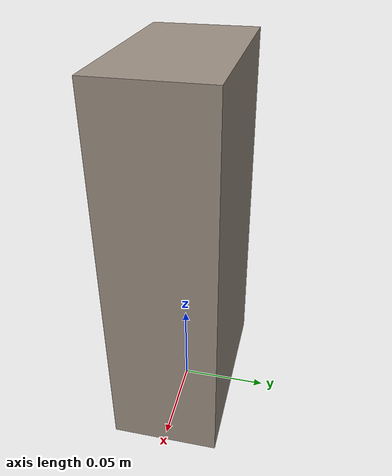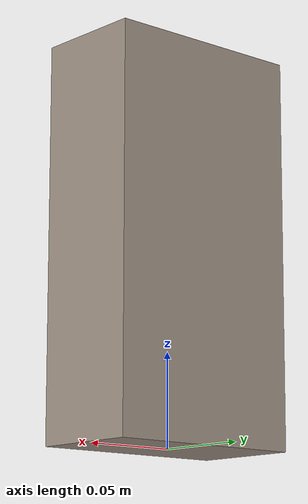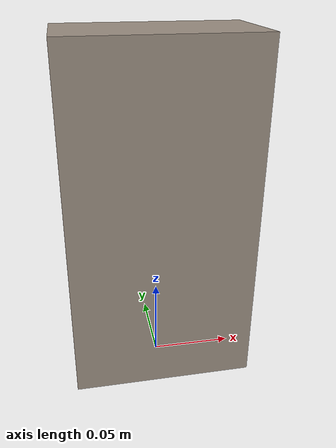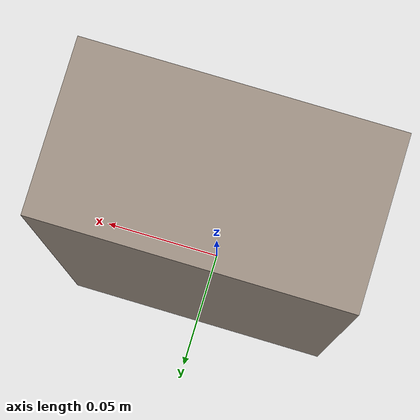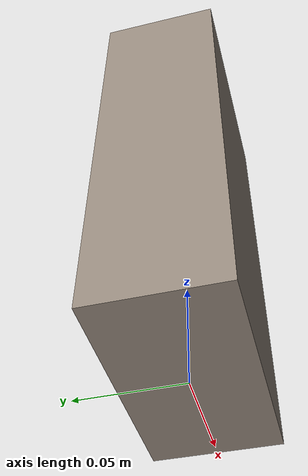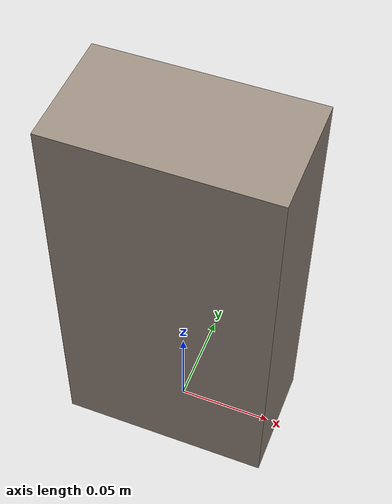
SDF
<sdf version="1.6">
    <model name="box2_kinematic">
        <allow_auto_disable>true</allow_auto_disable>
        <link name="link_1">
            <kinematic>true</kinematic>
            <pose>0 0 0.105 0 0 0 0</pose>
            <inertial>
                <pose>0 0 -0.08 0 0 0 0</pose>
                <inertia>
                    <ixx>0.03974999999999999</ixx>
                    <ixy>0</ixy>
                    <ixz>0</ixz>
                    <iyy>0.046833333333333324</iyy>
                    <iyz>0</iyz>
                    <izz>0.01308333333333333</izz>
                </inertia>
                <mass>10.0</mass>
            </inertial>
            <visual name="visual">
                <geometry>
                    <box>
                        <size>0.11 0.06 0.21</size>
                    </box>
                </geometry>
                <material>
                    <ambient>0.6 0.55 0.5 1.0</ambient>
                    <diffuse>0.6 0.55 0.5 1.0</diffuse>
                </material>
            </visual>
            <collision name="box_collision">
                <geometry>
                    <box>
                        <size>0.11 0.06 0.21</size>
                    </box>
                </geometry>
                <surface>
                    <friction>
                        <ode>
                            <mu>1.0</mu>
                            <mu2>1.0</mu2>
                        </ode>
                    </friction>
                    <contact>
                        <ode>
                            <kp>1e15</kp>
                            <kd>1e12</kd>
                        </ode>
                    </contact>
                </surface>
            </collision>
        </link>
    </model>
</sdf>
